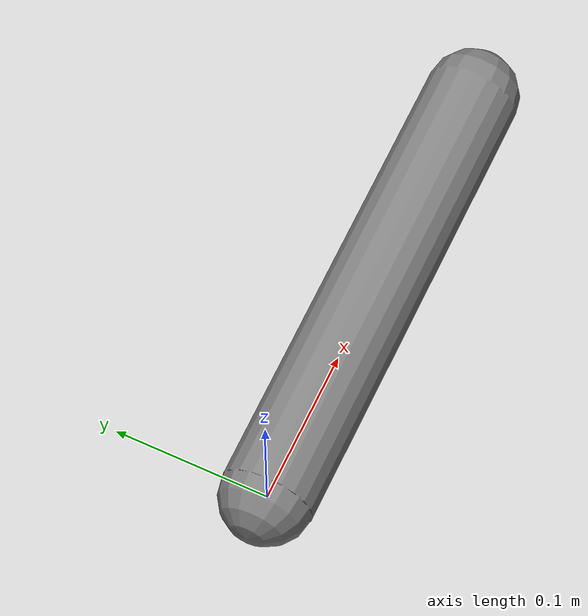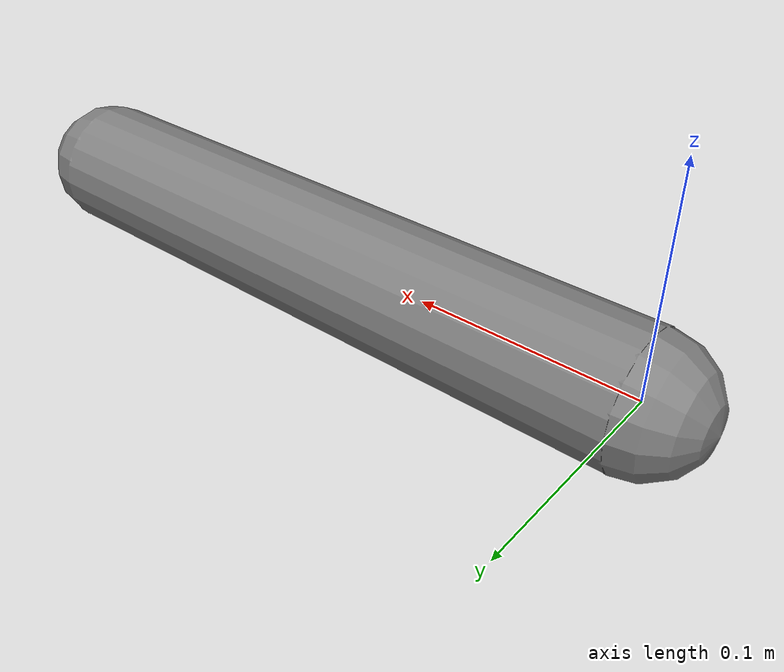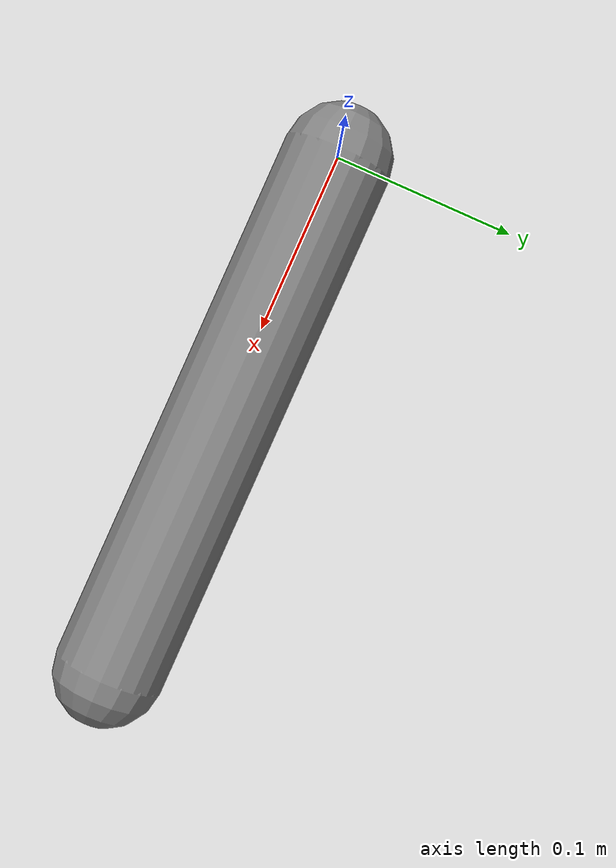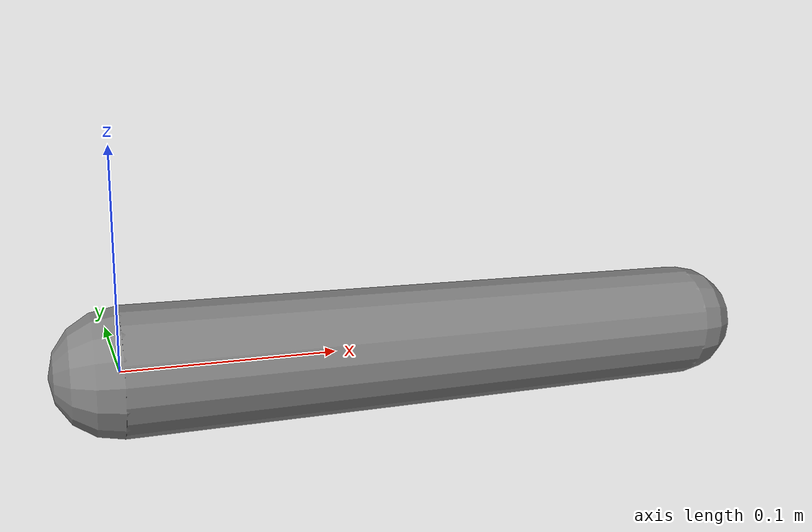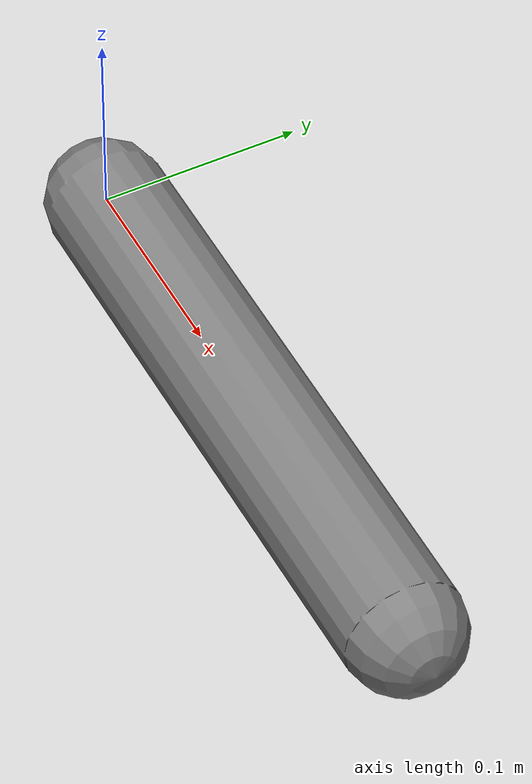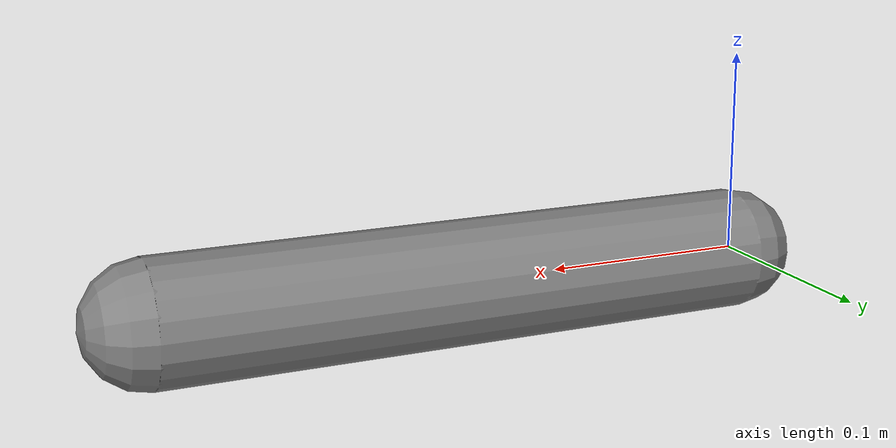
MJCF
<mujoco>
  <option timestep="0.01" gravity="0 0 0"/>
  <worldbody>
    <body name="b">
      <joint name="j" type="hinge" axis="0 0 1" damping="0.05"/>
      <geom type="capsule" fromto="0 0 0 0.3 0 0" size="0.03" mass="0.5"/>
      <site name="s" pos="0.3 0 0"/>
    </body>
  </worldbody>
  <actuator><motor name="m" joint="j" gear="0.2"/></actuator>
  <sensor>
    <jointpos joint="j"/>
    <jointpos joint="j" nsample="2" delay="0.01"/>
    <framepos objtype="site" objname="s"/>
    <framepos objtype="site" objname="s" nsample="2" delay="0.01"/>
    <jointvel joint="j"/>
    <jointvel joint="j" nsample="2" delay="0.01"/>
    <accelerometer site="s"/>
    <accelerometer site="s" nsample="2" delay="0.01"/>
  </sensor>
</mujoco>
